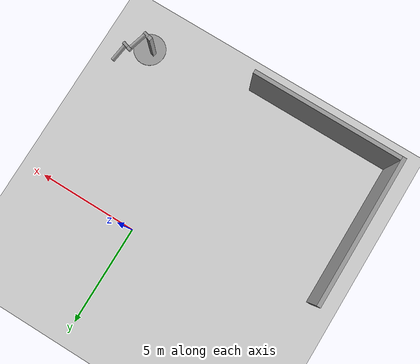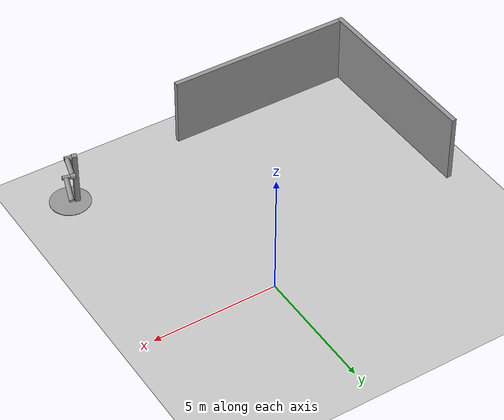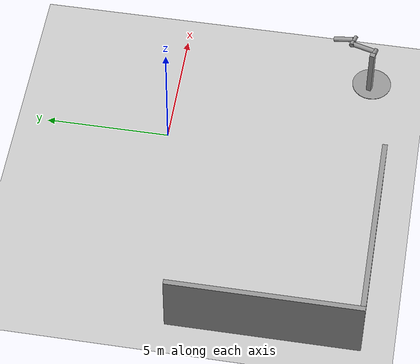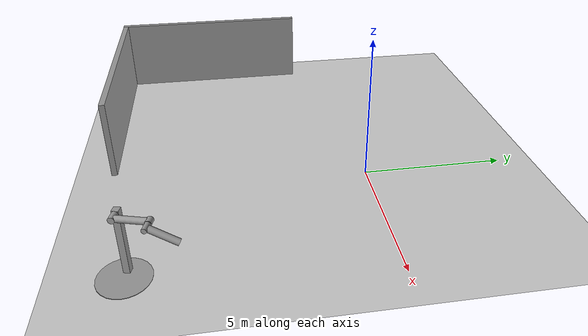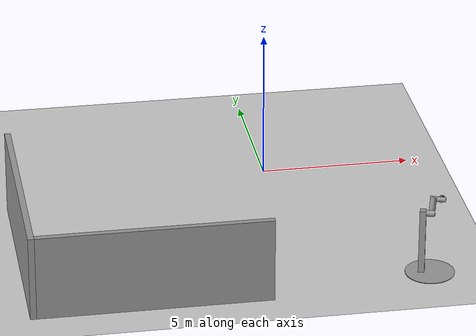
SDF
<sdf version="1.6">
 <world name="default">
  <model name="ground_plane">
   <static>1</static>
   <link name="link">
    <collision name="collision">
     <geometry><plane><normal>0 0 1</normal><size>100 100</size></plane></geometry>
     <surface>
      <contact><collide_bitmask>65535</collide_bitmask></contact>
      <friction><ode><mu>100</mu><mu2>50</mu2></ode></friction>
     </surface>
    </collision>
    <visual name="visual">
     <cast_shadows>0</cast_shadows>
     <geometry><plane><normal>0 0 1</normal><size>100 100</size></plane></geometry>
     <material>
      <script><uri>file://media/materials/scripts/gazebo.material</uri><name>Gazebo/Grey</name></script>
     </material>
    </visual>
   </link>
  </model>
  <model name="grey_wall">
   <static>1</static>
   <link name="link">
    <pose>0 0 1.4 0 -0 0</pose>
    <collision name="collision"><geometry><box><size>7.5 0.2 2.8</size></box></geometry></collision>
    <visual name="visual">
     <cast_shadows>0</cast_shadows>
     <geometry><box><size>7.5 0.2 2.8</size></box></geometry>
     <material>
      <script>
       <uri>model://grey_wall/materials/scripts</uri>
       <uri>model://grey_wall/materials/textures</uri>
       <name>vrc/grey_wall</name>
      </script>
     </material>
    </visual>
   </link>
   <pose>-4.94627 -8.8 0 0 -0 0</pose>
  </model>
  <model name="grey_wall_0_clone_clone_clone_clone">
   <static>1</static>
   <link name="link">
    <pose>0 0 1.4 0 -0 0</pose>
    <collision name="collision"><geometry><box><size>7.5 0.2 2.8</size></box></geometry></collision>
    <visual name="visual">
     <cast_shadows>0</cast_shadows>
     <geometry><box><size>7.5 0.2 2.8</size></box></geometry>
     <material>
      <script>
       <uri>model://grey_wall/materials/scripts</uri>
       <uri>model://grey_wall/materials/textures</uri>
       <name>vrc/grey_wall</name>
      </script>
     </material>
    </visual>
   </link>
   <pose>-8.79717 -5.1513 0 0 -0 1.57198</pose>
  </model>
  <model name="double_pendulum_with_base_clone">
   <link name="base">
    <inertial>
     <mass>100</mass>
     <inertia><ixx>1</ixx><ixy>0</ixy><ixz>0</ixz><iyy>1</iyy><iyz>0</iyz><izz>1</izz></inertia>
    </inertial>
    <visual name="vis_plate_on_ground">
     <pose>0 0 0.01 0 -0 0</pose>
     <geometry><cylinder><radius>0.8</radius><length>0.02</length></cylinder></geometry>
     <material>
      <script><uri>file://media/materials/scripts/gazebo.material</uri><name>Gazebo/Grey</name></script>
     </material>
    </visual>
    <visual name="vis_pole">
     <pose>-0.275 0 1.1 0 -0 0</pose>
     <geometry><box><size>0.2 0.2 2.2</size></box></geometry>
     <material>
      <script><uri>file://media/materials/scripts/gazebo.material</uri><name>Gazebo/Grey</name></script>
     </material>
    </visual>
    <collision name="col_plate_on_ground">
     <pose>0 0 0.01 0 -0 0</pose>
     <geometry><cylinder><radius>0.8</radius><length>0.02</length></cylinder></geometry>
    </collision>
    <collision name="col_pole">
     <pose>-0.275 0 1.1 0 -0 0</pose>
     <geometry><box><size>0.2 0.2 2.2</size></box></geometry>
    </collision>
   </link>
   <link name="upper_link">
    <pose>0 0 2.1 -1.5708 0 0</pose>
    <inertial>
     <pose>0 0 0.5 0 -0 0</pose>
     <inertia><ixx>1</ixx><ixy>0</ixy><ixz>0</ixz><iyy>1</iyy><iyz>0</iyz><izz>1</izz></inertia>
     <mass>1</mass>
    </inertial>
    <visual name="vis_upper_joint">
     <pose>-0.05 0 0 3.14159 1.57079 3.14159</pose>
     <geometry><cylinder><radius>0.1</radius><length>0.3</length></cylinder></geometry>
     <material>
      <script><uri>file://media/materials/scripts/gazebo.material</uri><name>Gazebo/Grey</name></script>
     </material>
    </visual>
    <visual name="vis_lower_joint">
     <pose>0 0 1 3.14159 1.57079 3.14159</pose>
     <geometry><cylinder><radius>0.1</radius><length>0.2</length></cylinder></geometry>
     <material>
      <script><uri>file://media/materials/scripts/gazebo.material</uri><name>Gazebo/Grey</name></script>
     </material>
    </visual>
    <visual name="vis_cylinder">
     <pose>0 0 0.5 0 -0 0</pose>
     <geometry><cylinder><radius>0.1</radius><length>0.9</length></cylinder></geometry>
     <material>
      <script><uri>file://media/materials/scripts/gazebo.material</uri><name>Gazebo/Grey</name></script>
     </material>
    </visual>
    <collision name="col_upper_joint">
     <pose>-0.05 0 0 3.14159 1.57079 3.14159</pose>
     <geometry><cylinder><radius>0.1</radius><length>0.3</length></cylinder></geometry>
    </collision>
    <collision name="col_lower_joint">
     <pose>0 0 1 3.14159 1.57079 3.14159</pose>
     <geometry><cylinder><radius>0.1</radius><length>0.2</length></cylinder></geometry>
    </collision>
    <collision name="col_cylinder">
     <pose>0 0 0.5 0 -0 0</pose>
     <geometry><cylinder><radius>0.1</radius><length>0.9</length></cylinder></geometry>
    </collision>
   </link>
   <link name="lower_link">
    <pose>0.25 1 2.1 -2 0 0</pose>
    <inertial>
     <pose>0 0 0.5 0 -0 0</pose>
     <inertia><ixx>1</ixx><ixy>0</ixy><ixz>0</ixz><iyy>1</iyy><iyz>0</iyz><izz>1</izz></inertia>
     <mass>1</mass>
    </inertial>
    <visual name="vis_lower_joint">
     <pose>0 0 0 3.14159 1.57079 3.14159</pose>
     <geometry><cylinder><radius>0.08</radius><length>0.3</length></cylinder></geometry>
     <material>
      <script><uri>file://media/materials/scripts/gazebo.material</uri><name>Gazebo/Grey</name></script>
     </material>
    </visual>
    <visual name="vis_cylinder">
     <pose>0 0 0.5 0 -0 0</pose>
     <geometry><cylinder><radius>0.1</radius><length>0.9</length></cylinder></geometry>
     <material>
      <script><uri>file://media/materials/scripts/gazebo.material</uri><name>Gazebo/Grey</name></script>
     </material>
    </visual>
    <collision name="col_lower_joint">
     <pose>0 0 0 3.14159 1.57079 3.14159</pose>
     <geometry><cylinder><radius>0.08</radius><length>0.3</length></cylinder></geometry>
    </collision>
    <collision name="col_cylinder">
     <pose>0 0 0.5 0 -0 0</pose>
     <geometry><cylinder><radius>0.1</radius><length>0.9</length></cylinder></geometry>
    </collision>
   </link>
   <joint name="upper_joint" type="revolute">
    <parent>base</parent>
    <child>upper_link</child>
    <axis>
     <xyz>1 0 0</xyz>
     <use_parent_model_frame>0</use_parent_model_frame>
     <limit><lower>-1e+16</lower><upper>1e+16</upper></limit>
     <dynamics><spring_reference>0</spring_reference><spring_stiffness>0</spring_stiffness></dynamics>
    </axis>
   </joint>
   <joint name="lower_joint" type="revolute">
    <parent>upper_link</parent>
    <child>lower_link</child>
    <axis>
     <xyz>1 0 0</xyz>
     <use_parent_model_frame>0</use_parent_model_frame>
     <limit><lower>-1e+16</lower><upper>1e+16</upper></limit>
     <dynamics><spring_reference>0</spring_reference><spring_stiffness>0</spring_stiffness></dynamics>
    </axis>
   </joint>
   <pose>4.00309 -7.89987 0 0 0 -0.277005</pose>
  </model>
 </world>
</sdf>
